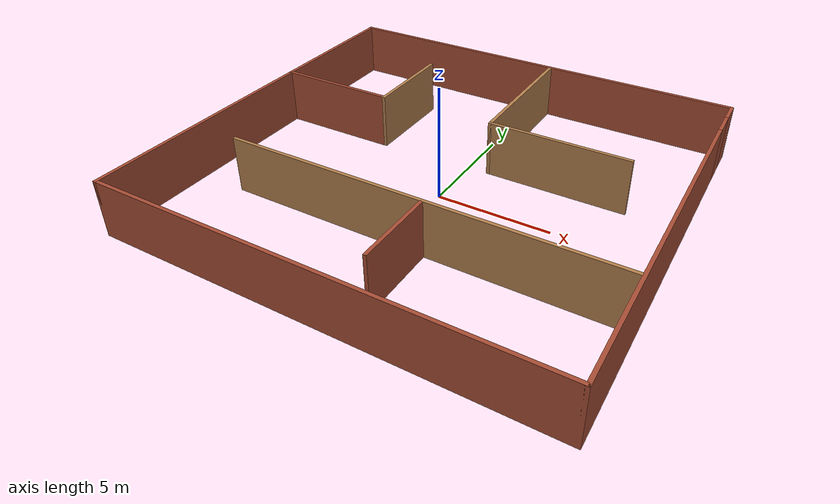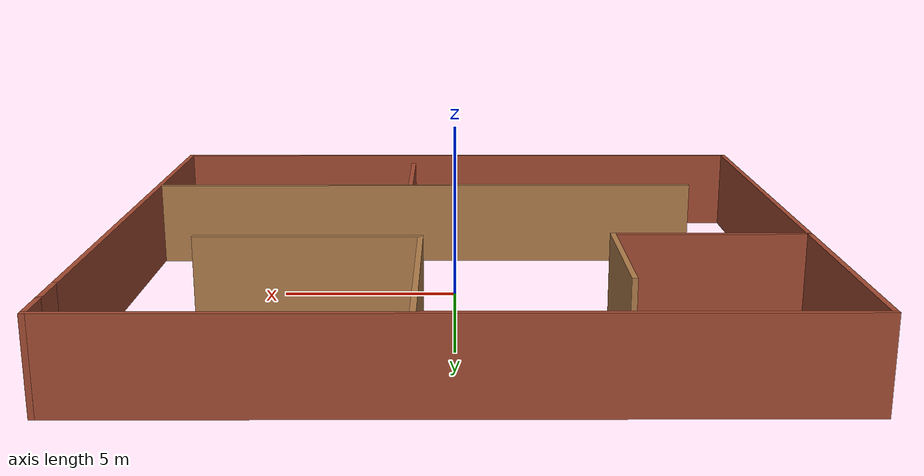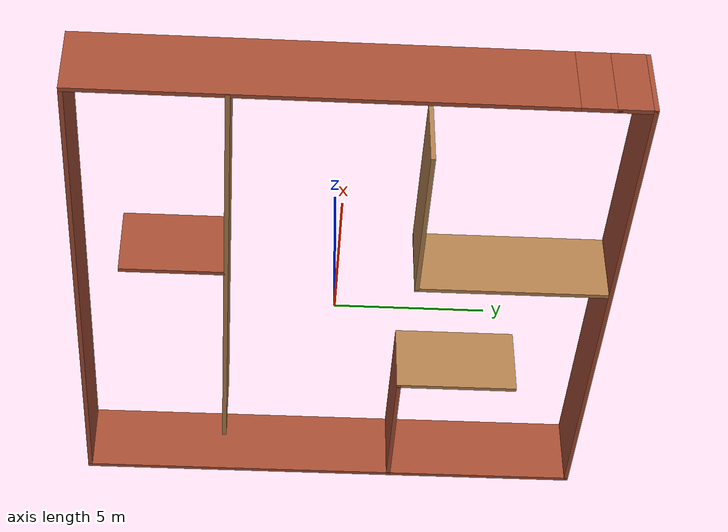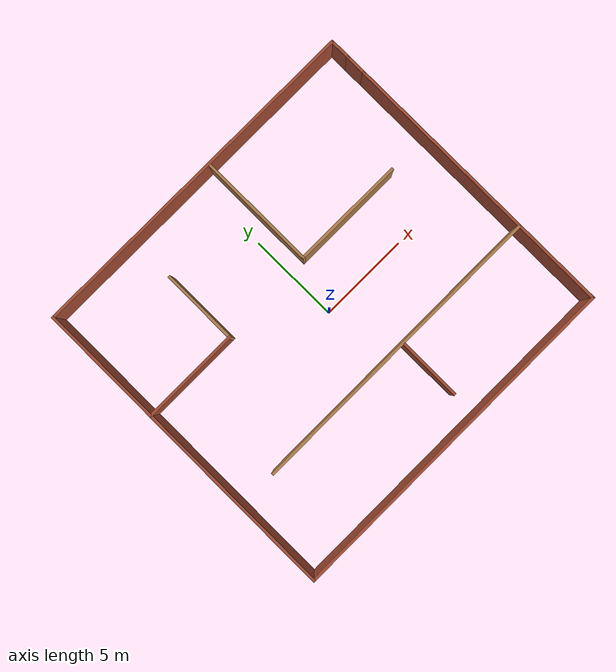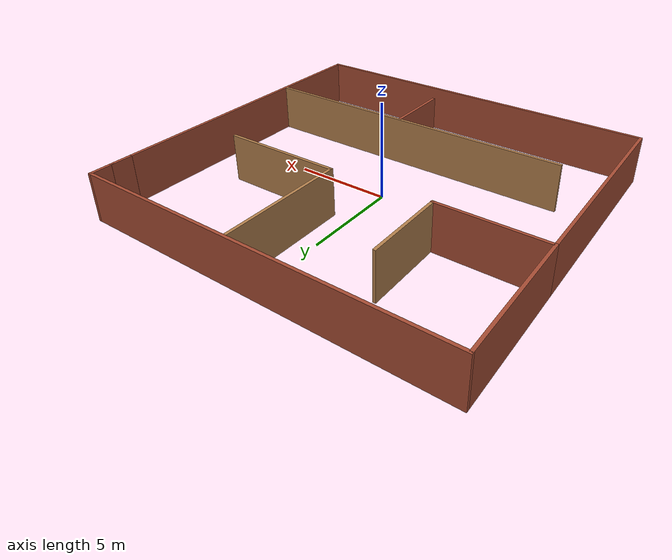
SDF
<?xml version='1.0'?>
<sdf version='1.6'>
  <model name='world2.world'>
    <pose frame=''>-0.097156 0.290593 0 0 -0 0</pose>
    <link name='Wall_10'>
      <collision name='Wall_10_Collision'>
        <geometry>
          <box>
            <size>5.5 0.15 2.5</size>
          </box>
        </geometry>
        <pose frame=''>0 0 1.25 0 -0 0</pose>
      </collision>
      <visual name='Wall_10_Visual'>
        <pose frame=''>0 0 1.25 0 -0 0</pose>
        <geometry>
          <box>
            <size>5.5 0.15 2.5</size>
          </box>
        </geometry>
        <material>
          <script>
            <uri>file://media/materials/scripts/gazebo.material</uri>
            <name>Gazebo/Bricks</name>
          </script>
          <ambient>1 1 1 1</ambient>
        </material>
      </visual>
      <pose frame=''>-6.875 2.2 0 0 -0 0</pose>
    </link>
    <link name='Wall_11'>
      <collision name='Wall_11_Collision'>
        <geometry>
          <box>
            <size>4.25 0.15 2.5</size>
          </box>
        </geometry>
        <pose frame=''>0 0 1.25 0 -0 0</pose>
      </collision>
      <visual name='Wall_11_Visual'>
        <pose frame=''>0 0 1.25 0 -0 0</pose>
        <geometry>
          <box>
            <size>4.25 0.15 2.5</size>
          </box>
        </geometry>
        <material>
          <script>
            <uri>file://media/materials/scripts/gazebo.material</uri>
            <name>Gazebo/Wood</name>
          </script>
          <ambient>1 1 1 1</ambient>
        </material>
      </visual>
      <pose frame=''>-4.2 4.25 0 0 -0 1.5708</pose>
    </link>
    <link name='Wall_14'>
      <collision name='Wall_14_Collision'>
        <geometry>
          <box>
            <size>17 0.15 2.5</size>
          </box>
        </geometry>
        <pose frame=''>0 0 1.25 0 -0 0</pose>
      </collision>
      <visual name='Wall_14_Visual'>
        <pose frame=''>0 0 1.25 0 -0 0</pose>
        <geometry>
          <box>
            <size>17 0.15 2.5</size>
          </box>
        </geometry>
        <material>
          <script>
            <uri>file://media/materials/scripts/gazebo.material</uri>
            <name>Gazebo/Wood</name>
          </script>
          <ambient>1 1 1 1</ambient>
        </material>
      </visual>
      <pose frame=''>1.09689 -3.94048 0 0 -0 0</pose>
    </link>
    <link name='Wall_16'>
      <collision name='Wall_16_Collision'>
        <geometry>
          <box>
            <size>3.5 0.15 2.5</size>
          </box>
        </geometry>
        <pose frame=''>0 0 1.25 0 -0 0</pose>
      </collision>
      <visual name='Wall_16_Visual'>
        <pose frame=''>0 0 1.25 0 -0 0</pose>
        <geometry>
          <box>
            <size>3.5 0.15 2.5</size>
          </box>
        </geometry>
        <material>
          <script>
            <uri>file://media/materials/scripts/gazebo.material</uri>
            <name>Gazebo/Bricks</name>
          </script>
          <ambient>1 1 1 1</ambient>
        </material>
      </visual>
      <pose frame=''>1.52287 -5.72957 0 0 0 -1.5708</pose>
    </link>
    <link name='Wall_18'>
      <collision name='Wall_18_Collision'>
        <geometry>
          <box>
            <size>6.5 0.15 2.5</size>
          </box>
        </geometry>
        <pose frame=''>0 0 1.25 0 -0 0</pose>
      </collision>
      <visual name='Wall_18_Visual'>
        <pose frame=''>0 0 1.25 0 -0 0</pose>
        <geometry>
          <box>
            <size>6.5 0.15 2.5</size>
          </box>
        </geometry>
        <material>
          <script>
            <uri>file://media/materials/scripts/gazebo.material</uri>
            <name>Gazebo/Wood</name>
          </script>
          <ambient>1 1 1 1</ambient>
        </material>
      </visual>
      <pose frame=''>1.03343 5.57754 0 0 0 -1.5708</pose>
    </link>
    <link name='Wall_19'>
      <collision name='Wall_19_Collision'>
        <geometry>
          <box>
            <size>6.25 0.15 2.5</size>
          </box>
        </geometry>
        <pose frame=''>0 0 1.25 0 -0 0</pose>
      </collision>
      <visual name='Wall_19_Visual'>
        <pose frame=''>0 0 1.25 0 -0 0</pose>
        <geometry>
          <box>
            <size>6.25 0.15 2.5</size>
          </box>
        </geometry>
        <material>
          <script>
            <uri>file://media/materials/scripts/gazebo.material</uri>
            <name>Gazebo/Wood</name>
          </script>
          <ambient>1 1 1 1</ambient>
        </material>
      </visual>
      <pose frame=''>4.08343 2.40254 0 0 -0 0</pose>
    </link>
    <link name='Wall_3'>
      <collision name='Wall_3_Collision'>
        <geometry>
          <box>
            <size>11.25 0.15 2.5</size>
          </box>
        </geometry>
        <pose frame=''>0 0 1.25 0 -0 0</pose>
      </collision>
      <visual name='Wall_3_Visual'>
        <pose frame=''>0 0 1.25 0 -0 0</pose>
        <geometry>
          <box>
            <size>11.25 0.15 2.5</size>
          </box>
        </geometry>
        <material>
          <script>
            <uri>file://media/materials/scripts/gazebo.material</uri>
            <name>Gazebo/Bricks</name>
          </script>
          <ambient>1 1 1 1</ambient>
        </material>
      </visual>
      <pose frame=''>-9.55 -3.35 0 0 0 -1.5708</pose>
    </link>
    <link name='Wall_4'>
      <collision name='Wall_4_Collision'>
        <geometry>
          <box>
            <size>19.25 0.15 2.5</size>
          </box>
        </geometry>
        <pose frame=''>0 0 1.25 0 -0 0</pose>
      </collision>
      <visual name='Wall_4_Visual'>
        <pose frame=''>0 0 1.25 0 -0 0</pose>
        <geometry>
          <box>
            <size>19.25 0.15 2.5</size>
          </box>
        </geometry>
        <material>
          <script>
            <uri>file://media/materials/scripts/gazebo.material</uri>
            <name>Gazebo/Bricks</name>
          </script>
          <ambient>1 1 1 1</ambient>
        </material>
      </visual>
      <pose frame=''>0 -8.9 0 0 -0 0</pose>
    </link>
    <link name='Wall_5'>
      <collision name='Wall_5_Collision'>
        <geometry>
          <box>
            <size>15.75 0.15 2.5</size>
          </box>
        </geometry>
        <pose frame=''>0 0 1.25 0 -0 0</pose>
      </collision>
      <visual name='Wall_5_Visual'>
        <pose frame=''>0 0 1.25 0 -0 0</pose>
        <geometry>
          <box>
            <size>15.75 0.15 2.5</size>
          </box>
        </geometry>
        <material>
          <script>
            <uri>file://media/materials/scripts/gazebo.material</uri>
            <name>Gazebo/Bricks</name>
          </script>
          <ambient>1 1 1 1</ambient>
        </material>
      </visual>
      <pose frame=''>9.55 -1.1 0 0 -0 1.5708</pose>
    </link>
    <link name='Wall_6'>
      <collision name='Wall_6_Collision'>
        <geometry>
          <box>
            <size>1.25 0.15 2.5</size>
          </box>
        </geometry>
        <pose frame=''>0 0 1.25 0 -0 0</pose>
      </collision>
      <visual name='Wall_6_Visual'>
        <pose frame=''>0 0 1.25 0 -0 0</pose>
        <geometry>
          <box>
            <size>1.25 0.15 2.5</size>
          </box>
        </geometry>
        <material>
          <script>
            <uri>file://media/materials/scripts/gazebo.material</uri>
            <name>Gazebo/Bricks</name>
          </script>
          <ambient>1 1 1 1</ambient>
        </material>
      </visual>
      <pose frame=''>9.55 7.25 0 0 -0 1.5708</pose>
    </link>
    <link name='Wall_7'>
      <collision name='Wall_7_Collision'>
        <geometry>
          <box>
            <size>1.25 0.15 2.5</size>
          </box>
        </geometry>
        <pose frame=''>0 0 1.25 0 -0 0</pose>
      </collision>
      <visual name='Wall_7_Visual'>
        <pose frame=''>0 0 1.25 0 -0 0</pose>
        <geometry>
          <box>
            <size>1.25 0.15 2.5</size>
          </box>
        </geometry>
        <material>
          <script>
            <uri>file://media/materials/scripts/gazebo.material</uri>
            <name>Gazebo/Bricks</name>
          </script>
          <ambient>1 1 1 1</ambient>
        </material>
      </visual>
      <pose frame=''>9.55 8.35 0 0 -0 1.5708</pose>
    </link>
    <link name='Wall_8'>
      <collision name='Wall_8_Collision'>
        <geometry>
          <box>
            <size>19.25 0.15 2.5</size>
          </box>
        </geometry>
        <pose frame=''>0 0 1.25 0 -0 0</pose>
      </collision>
      <visual name='Wall_8_Visual'>
        <pose frame=''>0 0 1.25 0 -0 0</pose>
        <geometry>
          <box>
            <size>19.25 0.15 2.5</size>
          </box>
        </geometry>
        <material>
          <script>
            <uri>file://media/materials/scripts/gazebo.material</uri>
            <name>Gazebo/Bricks</name>
          </script>
          <ambient>1 1 1 1</ambient>
        </material>
      </visual>
      <pose frame=''>0 8.9 0 0 -0 3.14159</pose>
    </link>
    <link name='Wall_9'>
      <collision name='Wall_9_Collision'>
        <geometry>
          <box>
            <size>6.85 0.15 2.5</size>
          </box>
        </geometry>
        <pose frame=''>0 0 1.25 0 -0 0</pose>
      </collision>
      <visual name='Wall_9_Visual'>
        <pose frame=''>0 0 1.25 0 -0 0</pose>
        <geometry>
          <box>
            <size>6.85 0.15 2.5</size>
          </box>
        </geometry>
        <material>
          <script>
            <uri>file://media/materials/scripts/gazebo.material</uri>
            <name>Gazebo/Bricks</name>
          </script>
          <ambient>1 1 1 1</ambient>
        </material>
      </visual>
      <pose frame=''>-9.55 5.55 0 0 0 -1.5708</pose>
    </link>
    <static>1</static>
  </model>
</sdf>
